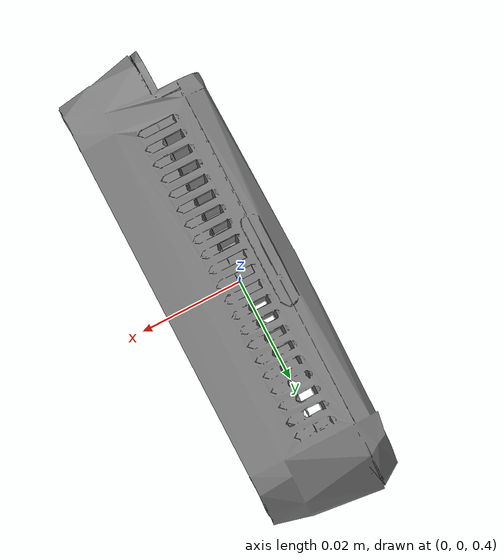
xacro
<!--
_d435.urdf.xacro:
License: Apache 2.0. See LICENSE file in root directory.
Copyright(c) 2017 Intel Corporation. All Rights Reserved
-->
<?xml version="1.0"?>
<robot name="realsense2_camera" xmlns:xacro="http://ros.org/wiki/xacro">
  <xacro:include filename="$(find realsense2_description)/urdf/_d435.urdf.xacro" />

  <link name="world" />
  <sensor_d435 parent="world">
    <origin xyz="0 0 0.4" rpy="0 0 0"/>
  </sensor_d435>
</robot>

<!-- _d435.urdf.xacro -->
<robot name="sensor_d435" xmlns:xacro="http://ros.org/wiki/xacro">
  <!--File includes-->
  <xacro:include filename="$(find realsense2_description)/urdf/_d435.gazebo.xacro"/>

  <xacro:macro name="sensor_d435" params=" visualization:=1 name:=camera topics_ns:=camera parent *origin publish_pointcloud:=true">
    <xacro:property name="M_PI" value="3.1415926535897931" />

    <!-- The following values are approximate, and the camera node
     publishing TF values with actual calibrated camera extrinsic values -->
    <xacro:property name="d435_cam_depth_to_left_ir_offset" value="0.0"/>
    <xacro:property name="d435_cam_depth_to_right_ir_offset" value="-0.050"/>
    <xacro:property name="d435_cam_depth_to_color_offset" value="0.015"/>

    <!-- The following values model the aluminum peripherial case for the
    D435 camera, with the camera joint represented by the actual
    peripherial camera tripod mount -->
    <xacro:property name="d435_cam_width" value="0.090"/>
    <xacro:property name="d435_cam_height" value="0.025"/>
    <xacro:property name="d435_cam_depth" value="0.02505"/>
    <xacro:property name="d435_cam_mount_from_center_offset" value="0.0149"/>

    <!-- The following offset is relative the the physical D435 camera peripherial
    camera tripod mount -->
    <xacro:property name="d435_cam_depth_px" value="${d435_cam_mount_from_center_offset}"/>
    <xacro:property name="d435_cam_depth_py" value="0.0175"/>
    <xacro:property name="d435_cam_depth_pz" value="${d435_cam_height/2}"/>

    <material name="${name}_aluminum">
      <color rgba="0.5 0.5 0.5 1"/>
    </material>

    <!-- camera body, with origin at bottom screw mount -->
    <joint name="${name}_joint" type="fixed">
      <xacro:insert_block name="origin" />
      <parent link="${parent}"/>
      <child link="${name}_bottom_screw_frame" />
    </joint>
    <link name="${name}_bottom_screw_frame"/>

    <joint name="${name}_link_joint" type="fixed">
      <origin xyz="0 ${d435_cam_depth_py} ${d435_cam_depth_pz}" rpy="0 0 0"/>
      <parent link="${name}_bottom_screw_frame"/>
      <child link="${name}_link" />
    </joint>

    <link name="${name}_link">
      <visual>
      <origin xyz="${d435_cam_mount_from_center_offset} ${-d435_cam_depth_py} 0" rpy="${M_PI/2} 0 ${M_PI/2}"/>
        <geometry>
          <!-- TODO:: Change to the proper path -->
          <mesh filename="package://realsense2_description/meshes/d435.dae" />

        </geometry>
        <material name="${name}_aluminum"/>
      </visual>
      <collision>
        <origin xyz="0 ${-d435_cam_depth_py} 0" rpy="0 0 0"/>
        <geometry>
        <box size="${d435_cam_depth} ${d435_cam_width} ${d435_cam_height}"/>
        </geometry>
      </collision>
      <inertial>
        <!-- The following are not reliable values, and should not be used for modeling -->
        <mass value="0.0001" />
        <origin xyz="0 0 0" />
        <inertia ixx="0.00001" ixy="0.0" ixz="0.0" iyy="0.00001" iyz="0.0" izz="0.00001" />
      </inertial>
    </link>

    <!-- camera depth joints and links -->
    <joint name="${name}_depth_joint" type="fixed">
      <origin xyz="0 0 0" rpy="0 0 0"/>
      <parent link="${name}_link"/>
      <child link="${name}_depth_frame" />
    </joint>
    <link name="${name}_depth_frame"/>

    <joint name="${name}_depth_optical_joint" type="fixed">
      <origin xyz="${d435_cam_depth_pz} 0 0" rpy="${-M_PI/2} 0 ${-M_PI/2}" />
      <parent link="${name}_depth_frame" />
      <child link="${name}_depth_optical_frame" />
    </joint>
    <link name="${name}_depth_optical_frame"/>

    <!-- camera left IR joints and links -->
    <joint name="${name}_left_ir_joint" type="fixed">
      <origin xyz="0 ${d435_cam_depth_to_left_ir_offset} 0" rpy="0 0 0" />
      <parent link="${name}_depth_frame" />
      <child link="${name}_left_ir_frame" />
    </joint>
    <link name="${name}_left_ir_frame"/>

    <joint name="${name}_left_ir_optical_joint" type="fixed">
      <origin xyz="${d435_cam_depth_pz} 0 0" rpy="${-M_PI/2} 0 ${-M_PI/2}" />
      <parent link="${name}_left_ir_frame" />
      <child link="${name}_left_ir_optical_frame" />
    </joint>
    <link name="${name}_left_ir_optical_frame"/>

    <!-- camera right IR joints and links -->
    <joint name="${name}_right_ir_joint" type="fixed">
      <origin xyz="0 ${d435_cam_depth_to_right_ir_offset} 0" rpy="0 0 0" />
      <parent link="${name}_depth_frame" />
      <child link="${name}_right_ir_frame" />
    </joint>
    <link name="${name}_right_ir_frame"/>

    <joint name="${name}_right_ir_optical_joint" type="fixed">
      <origin xyz="${d435_cam_depth_pz} 0 0" rpy="${-M_PI/2} 0 ${-M_PI/2}" />
      <parent link="${name}_right_ir_frame" />
      <child link="${name}_right_ir_optical_frame" />
    </joint>
    <link name="${name}_right_ir_optical_frame"/>

    <!-- camera color joints and links -->
    <joint name="${name}_color_joint" type="fixed">
      <origin xyz="0 ${d435_cam_depth_to_color_offset} 0" rpy="0 0 0" />
      <parent link="${name}_depth_frame" />
      <child link="${name}_color_frame" />
    </joint>
    <link name="${name}_color_frame"/>

    <joint name="${name}_color_optical_joint" type="fixed">
      <origin xyz="${d435_cam_depth_pz} 0 0" rpy="${-M_PI/2} 0 ${-M_PI/2}" />
      <parent link="${name}_color_frame" />
      <child link="${name}_color_optical_frame" />
    </joint>
    <link name="${name}_color_optical_frame"/>

    <!-- Realsense Gazebo Plugin -->
    <xacro:gazebo_d435 visualize="${visualization}" camera_name="${name}" reference_link="${name}_link" topics_ns="${topics_ns}" depth_optical_frame="${name}_depth_optical_frame" color_optical_frame="${name}_color_optical_frame" infrared1_optical_frame="${name}_left_ir_optical_frame" infrared2_optical_frame="${name}_right_ir_optical_frame" publish_pointcloud="${publish_pointcloud}"/>

  </xacro:macro>
</robot>
